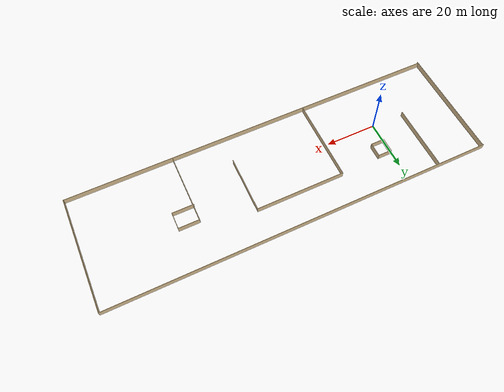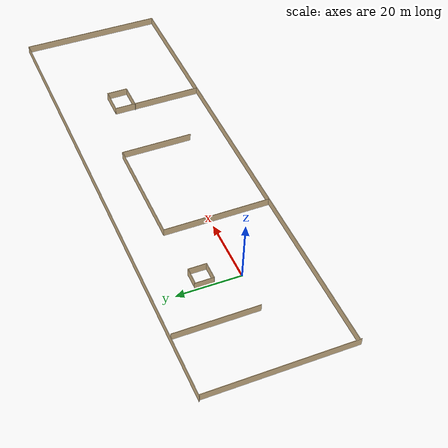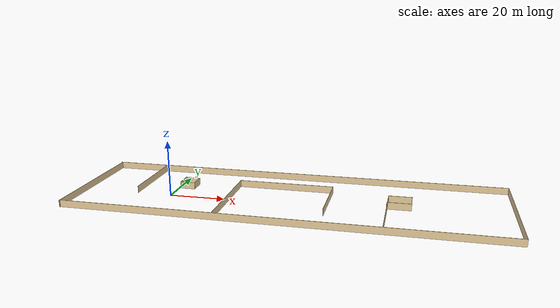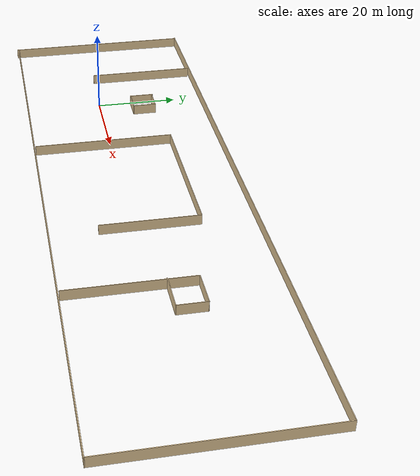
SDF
<?xml version='1.0'?>
<sdf version='1.7'>
  <model name='map2'>
    <pose>43.0415 3.87569 0 0 -0 0</pose>
    <link name='Wall_0'>
      <collision name='Wall_0_Collision'>
        <geometry>
          <box>
            <size>46 0.15 2.5</size>
          </box>
        </geometry>
        <pose>0 0 1.25 0 -0 0</pose>
      </collision>
      <visual name='Wall_0_Visual'>
        <pose>0 0 1.25 0 -0 0</pose>
        <geometry>
          <box>
            <size>46 0.15 2.5</size>
          </box>
        </geometry>
        <material>
          <script>
            <uri>file://media/materials/scripts/gazebo.material</uri>
            <name>Gazebo/Grey</name>
          </script>
          <ambient>0.921569 0.807843 0.615686 1</ambient>
        </material>
        <meta>
          <layer>0</layer>
        </meta>
      </visual>
      <pose>-75.6567 -0.085996 0 0 -0 1.5708</pose>
    </link>
    <link name='Wall_10'>
      <collision name='Wall_10_Collision'>
        <geometry>
          <box>
            <size>35 0.15 2.5</size>
          </box>
        </geometry>
        <pose>0 0 1.25 0 -0 0</pose>
      </collision>
      <visual name='Wall_10_Visual'>
        <pose>0 0 1.25 0 -0 0</pose>
        <geometry>
          <box>
            <size>35 0.15 2.5</size>
          </box>
        </geometry>
        <material>
          <script>
            <uri>file://media/materials/scripts/gazebo.material</uri>
            <name>Gazebo/Grey</name>
          </script>
          <ambient>0.921569 0.807843 0.615686 1</ambient>
        </material>
        <meta>
          <layer>0</layer>
        </meta>
      </visual>
      <pose>-3.64735 10.8735 0 0 -0 0</pose>
    </link>
    <link name='Wall_11'>
      <collision name='Wall_11_Collision'>
        <geometry>
          <box>
            <size>22.75 0.15 2.5</size>
          </box>
        </geometry>
        <pose>0 0 1.25 0 -0 0</pose>
      </collision>
      <visual name='Wall_11_Visual'>
        <pose>0 0 1.25 0 -0 0</pose>
        <geometry>
          <box>
            <size>22.75 0.15 2.5</size>
          </box>
        </geometry>
        <material>
          <script>
            <uri>file://media/materials/scripts/gazebo.material</uri>
            <name>Gazebo/Grey</name>
          </script>
          <ambient>0.921569 0.807843 0.615686 1</ambient>
        </material>
        <meta>
          <layer>0</layer>
        </meta>
      </visual>
      <pose>13.7777 -0.426522 0 0 -0 -1.5708</pose>
    </link>
    <link name='Wall_13'>
      <collision name='Wall_13_Collision'>
        <geometry>
          <box>
            <size>5.25 0.15 2.5</size>
          </box>
        </geometry>
        <pose>0 0 1.25 0 -0 0</pose>
      </collision>
      <visual name='Wall_13_Visual'>
        <pose>0 0 1.25 0 -0 0</pose>
        <geometry>
          <box>
            <size>5.25 0.15 2.5</size>
          </box>
        </geometry>
        <material>
          <script>
            <uri>file://media/materials/scripts/gazebo.material</uri>
            <name>Gazebo/Grey</name>
          </script>
          <ambient>0.921569 0.807843 0.615686 1</ambient>
        </material>
        <meta>
          <layer>0</layer>
        </meta>
      </visual>
      <pose>-39.7342 10.0241 0 0 -0 0</pose>
    </link>
    <link name='Wall_14'>
      <collision name='Wall_14_Collision'>
        <geometry>
          <box>
            <size>5.75 0.15 2.5</size>
          </box>
        </geometry>
        <pose>0 0 1.25 0 -0 0</pose>
      </collision>
      <visual name='Wall_14_Visual'>
        <pose>0 0 1.25 0 -0 0</pose>
        <geometry>
          <box>
            <size>5.75 0.15 2.5</size>
          </box>
        </geometry>
        <material>
          <script>
            <uri>file://media/materials/scripts/gazebo.material</uri>
            <name>Gazebo/Grey</name>
          </script>
          <ambient>0.921569 0.807843 0.615686 1</ambient>
        </material>
        <meta>
          <layer>0</layer>
        </meta>
      </visual>
      <pose>-37.1842 7.22415 0 0 -0 -1.5708</pose>
    </link>
    <link name='Wall_15'>
      <collision name='Wall_15_Collision'>
        <geometry>
          <box>
            <size>5.5 0.15 2.5</size>
          </box>
        </geometry>
        <pose>0 0 1.25 0 -0 0</pose>
      </collision>
      <visual name='Wall_15_Visual'>
        <pose>0 0 1.25 0 -0 0</pose>
        <geometry>
          <box>
            <size>5.5 0.15 2.5</size>
          </box>
        </geometry>
        <material>
          <script>
            <uri>file://media/materials/scripts/gazebo.material</uri>
            <name>Gazebo/Grey</name>
          </script>
          <ambient>0.921569 0.807843 0.615686 1</ambient>
        </material>
        <meta>
          <layer>0</layer>
        </meta>
      </visual>
      <pose>-39.8592 4.42415 0 0 -0 3.14159</pose>
    </link>
    <link name='Wall_16'>
      <collision name='Wall_16_Collision'>
        <geometry>
          <box>
            <size>6 0.15 2.5</size>
          </box>
        </geometry>
        <pose>0 0 1.25 0 -0 0</pose>
      </collision>
      <visual name='Wall_16_Visual'>
        <pose>0 0 1.25 0 -0 0</pose>
        <geometry>
          <box>
            <size>6 0.15 2.5</size>
          </box>
        </geometry>
        <material>
          <script>
            <uri>file://media/materials/scripts/gazebo.material</uri>
            <name>Gazebo/Grey</name>
          </script>
          <ambient>0.921569 0.807843 0.615686 1</ambient>
        </material>
        <meta>
          <layer>0</layer>
        </meta>
      </visual>
      <pose>-42.5342 7.34915 0 0 -0 1.5708</pose>
    </link>
    <link name='Wall_18'>
      <collision name='Wall_18_Collision'>
        <geometry>
          <box>
            <size>28.25 0.15 2.5</size>
          </box>
        </geometry>
        <pose>0 0 1.25 0 -0 0</pose>
      </collision>
      <visual name='Wall_18_Visual'>
        <pose>0 0 1.25 0 -0 0</pose>
        <geometry>
          <box>
            <size>28.25 0.15 2.5</size>
          </box>
        </geometry>
        <material>
          <script>
            <uri>file://media/materials/scripts/gazebo.material</uri>
            <name>Gazebo/Grey</name>
          </script>
          <ambient>0.921569 0.807843 0.615686 1</ambient>
        </material>
        <meta>
          <layer>0</layer>
        </meta>
      </visual>
      <pose>34.1218 -8.17652 0 0 -0 1.5708</pose>
    </link>
    <link name='Wall_19'>
      <collision name='Wall_19_Collision'>
        <geometry>
          <box>
            <size>8.25 0.15 2.5</size>
          </box>
        </geometry>
        <pose>0 0 1.25 0 -0 0</pose>
      </collision>
      <visual name='Wall_19_Visual'>
        <pose>0 0 1.25 0 -0 0</pose>
        <geometry>
          <box>
            <size>8.25 0.15 2.5</size>
          </box>
        </geometry>
        <material>
          <script>
            <uri>file://media/materials/scripts/gazebo.material</uri>
            <name>Gazebo/Grey</name>
          </script>
          <ambient>0.921569 0.807843 0.615686 1</ambient>
        </material>
        <meta>
          <layer>0</layer>
        </meta>
      </visual>
      <pose>38.1718 5.87348 0 0 -0 0</pose>
    </link>
    <link name='Wall_20'>
      <collision name='Wall_20_Collision'>
        <geometry>
          <box>
            <size>6.75 0.15 2.5</size>
          </box>
        </geometry>
        <pose>0 0 1.25 0 -0 0</pose>
      </collision>
      <visual name='Wall_20_Visual'>
        <pose>0 0 1.25 0 -0 0</pose>
        <geometry>
          <box>
            <size>6.75 0.15 2.5</size>
          </box>
        </geometry>
        <material>
          <script>
            <uri>file://media/materials/scripts/gazebo.material</uri>
            <name>Gazebo/Grey</name>
          </script>
          <ambient>0.921569 0.807843 0.615686 1</ambient>
        </material>
        <meta>
          <layer>0</layer>
        </meta>
      </visual>
      <pose>42.2218 2.57348 0 0 -0 -1.5708</pose>
    </link>
    <link name='Wall_21'>
      <collision name='Wall_21_Collision'>
        <geometry>
          <box>
            <size>8.5 0.15 2.5</size>
          </box>
        </geometry>
        <pose>0 0 1.25 0 -0 0</pose>
      </collision>
      <visual name='Wall_21_Visual'>
        <pose>0 0 1.25 0 -0 0</pose>
        <geometry>
          <box>
            <size>8.5 0.15 2.5</size>
          </box>
        </geometry>
        <material>
          <script>
            <uri>file://media/materials/scripts/gazebo.material</uri>
            <name>Gazebo/Grey</name>
          </script>
          <ambient>0.921569 0.807843 0.615686 1</ambient>
        </material>
        <meta>
          <layer>0</layer>
        </meta>
      </visual>
      <pose>38.0468 -0.726522 0 0 -0 3.14159</pose>
    </link>
    <link name='Wall_3'>
      <collision name='Wall_3_Collision'>
        <geometry>
          <box>
            <size>152.25 0.15 2.5</size>
          </box>
        </geometry>
        <pose>0 0 1.25 0 -0 0</pose>
      </collision>
      <visual name='Wall_3_Visual'>
        <pose>0 0 1.25 0 -0 0</pose>
        <geometry>
          <box>
            <size>152.25 0.15 2.5</size>
          </box>
        </geometry>
        <material>
          <script>
            <uri>file://media/materials/scripts/gazebo.material</uri>
            <name>Gazebo/Grey</name>
          </script>
          <ambient>0.921569 0.807843 0.615686 1</ambient>
        </material>
        <meta>
          <layer>0</layer>
        </meta>
      </visual>
      <pose>0 23.011 0 0 -0 0</pose>
    </link>
    <link name='Wall_4'>
      <collision name='Wall_4_Collision'>
        <geometry>
          <box>
            <size>45.75 0.15 2.5</size>
          </box>
        </geometry>
        <pose>0 0 1.25 0 -0 0</pose>
      </collision>
      <visual name='Wall_4_Visual'>
        <pose>0 0 1.25 0 -0 0</pose>
        <geometry>
          <box>
            <size>45.75 0.15 2.5</size>
          </box>
        </geometry>
        <material>
          <script>
            <uri>file://media/materials/scripts/gazebo.material</uri>
            <name>Gazebo/Grey</name>
          </script>
          <ambient>0.921569 0.807843 0.615686 1</ambient>
        </material>
        <meta>
          <layer>0</layer>
        </meta>
      </visual>
      <pose>76.05 0.210996 0 0 -0 -1.5708</pose>
    </link>
    <link name='Wall_5'>
      <collision name='Wall_5_Collision'>
        <geometry>
          <box>
            <size>151.75 0.15 2.5</size>
          </box>
        </geometry>
        <pose>0 0 1.25 0 -0 0</pose>
      </collision>
      <visual name='Wall_5_Visual'>
        <pose>0 0 1.25 0 -0 0</pose>
        <geometry>
          <box>
            <size>151.75 0.15 2.5</size>
          </box>
        </geometry>
        <material>
          <script>
            <uri>file://media/materials/scripts/gazebo.material</uri>
            <name>Gazebo/Grey</name>
          </script>
          <ambient>0.921569 0.807843 0.615686 1</ambient>
        </material>
        <meta>
          <layer>0</layer>
        </meta>
      </visual>
      <pose>0.25 -22.589 0 0 -0 3.14159</pose>
    </link>
    <link name='Wall_7'>
      <collision name='Wall_7_Collision'>
        <geometry>
          <box>
            <size>26.25 0.15 2.5</size>
          </box>
        </geometry>
        <pose>0 0 1.25 0 -0 0</pose>
      </collision>
      <visual name='Wall_7_Visual'>
        <pose>0 0 1.25 0 -0 0</pose>
        <geometry>
          <box>
            <size>26.25 0.15 2.5</size>
          </box>
        </geometry>
        <material>
          <script>
            <uri>file://media/materials/scripts/gazebo.material</uri>
            <name>Gazebo/Grey</name>
          </script>
          <ambient>0.921569 0.807843 0.615686 1</ambient>
        </material>
        <meta>
          <layer>0</layer>
        </meta>
      </visual>
      <pose>-55.9204 9.5281 0 0 -0 -1.5708</pose>
    </link>
    <link name='Wall_9'>
      <collision name='Wall_9_Collision'>
        <geometry>
          <box>
            <size>33.25 0.15 2.5</size>
          </box>
        </geometry>
        <pose>0 0 1.25 0 -0 0</pose>
      </collision>
      <visual name='Wall_9_Visual'>
        <pose>0 0 1.25 0 -0 0</pose>
        <geometry>
          <box>
            <size>33.25 0.15 2.5</size>
          </box>
        </geometry>
        <material>
          <script>
            <uri>file://media/materials/scripts/gazebo.material</uri>
            <name>Gazebo/Grey</name>
          </script>
          <ambient>0.921569 0.807843 0.615686 1</ambient>
        </material>
        <meta>
          <layer>0</layer>
        </meta>
      </visual>
      <pose>-21.0723 -5.67652 0 0 -0 1.5708</pose>
    </link>
    <static>1</static>
  </model>
</sdf>
